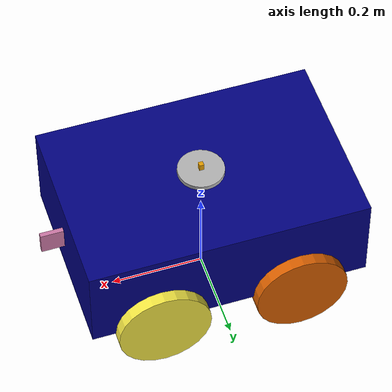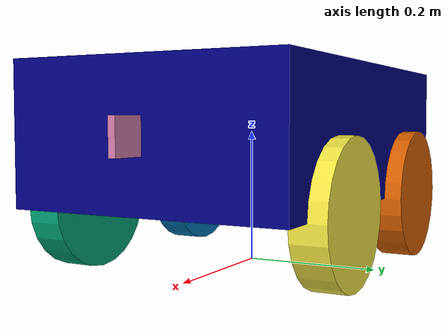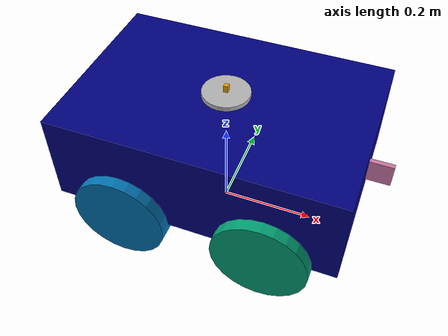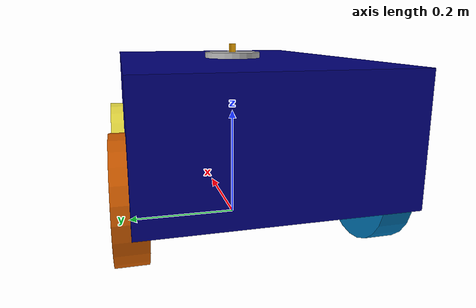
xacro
<?xml version="1.0"?>

<robot name="my_robot" xmlns:xacro="http://www.ros.org/wiki/xacro">
    <!-- Corrected typo in filename from "common_properies.xacro" to "common_properties.xacro" -->
    <xacro:include filename="common_properties.xacro" />

    <!-- Defined properties -->
    <xacro:property name="base_length" value="0.6" />
    <xacro:property name="base_width" value="0.4" />
    <xacro:property name="base_height" value="0.2" />
    <xacro:property name="wheel_radius" value="0.1" />
    <xacro:property name="wheel_length" value="0.05" />
    <xacro:property name="camera_length" value="0.01" />
    <xacro:property name="camera_width" value="0.05" />
    <xacro:property name="camera_height" value="0.1" />

    <!-- Links -->
    <link name="base_footprint" />

    <link name="base_link">
        <visual>
            <geometry>
                <box size="${base_length} ${base_width} ${base_height}" />
            </geometry>
            <!-- Corrected property syntax from {base_height / 2.0} to ${base_height / 2.0} -->
            <origin xyz="0 0 ${base_height / 2.0}" rpy="0 0 0" />
            <material name="blue" />
        </visual>
        <collision>
            <geometry>
                <box size="${base_length} ${base_width} ${base_height}" />
            </geometry>
            <origin xyz="0 0 ${base_height / 2.0}" rpy="0 0 0" />
        </collision>
        <!-- Corrected inertia dimensions (removed multiplication by 2) -->
        <xacro:box_inertia m="5.0" l="${base_length}" w="${base_width}" h="${base_height}"
                           xyz="0 0 ${base_height / 2.0}" rpy="0 0 0" />
    </link>

    <link name="front_right_wheel">
        <visual>
            <geometry>
                <!-- Updated to use properties for consistency -->
                <cylinder radius="${wheel_radius}" length="${wheel_length}" />
            </geometry>
            <!-- Standardized rotation to pi/2 -->
            <origin xyz="0 0 0" rpy="${pi / 2.0} 0 0" />
        </visual>
        <collision>
            <geometry>
                <cylinder radius="${wheel_radius}" length="${wheel_length}" />
            </geometry>
            <origin xyz="0 0 0" rpy="${pi / 2.0} 0 0" />
        </collision>
        <!-- Corrected inertia radius (removed multiplication by 2) -->
        <xacro:cylinder_inertia m="1.0" r="${wheel_radius}" h="${wheel_length}" xyz="0 0 0" rpy="${pi / 2.0} 0 0" />
    </link>

    <link name="front_left_wheel">
        <visual>
            <geometry>
                <cylinder radius="${wheel_radius}" length="${wheel_length}" />
            </geometry>
            <origin xyz="0 0 0" rpy="${pi / 2.0} 0 0" />
        </visual>
        <collision>
            <geometry>
                <cylinder radius="${wheel_radius}" length="${wheel_length}" />
            </geometry>
            <origin xyz="0 0 0" rpy="${pi / 2.0} 0 0" />
        </collision>
        <xacro:cylinder_inertia m="1.0" r="${wheel_radius}" h="${wheel_length}" xyz="0 0 0" rpy="${pi / 2.0} 0 0" />
    </link>

    <link name="back_right_wheel">
        <visual>
            <geometry>
                <cylinder radius="${wheel_radius}" length="${wheel_length}" />
            </geometry>
            <origin xyz="0 0 0" rpy="${pi / 2.0} 0 0" />
        </visual>
        <collision>
            <geometry>
                <cylinder radius="${wheel_radius}" length="${wheel_length}" />
            </geometry>
            <origin xyz="0 0 0" rpy="${pi / 2.0} 0 0" />
        </collision>
        <xacro:cylinder_inertia m="1.0" r="${wheel_radius}" h="${wheel_length}" xyz="0 0 0" rpy="${pi / 2.0} 0 0" />
    </link>

    <link name="back_left_wheel">
        <visual>
            <geometry>
                <cylinder radius="${wheel_radius}" length="${wheel_length}" />
            </geometry>
            <origin xyz="0 0 0" rpy="${pi / 2.0} 0 0" />
        </visual>
        <collision>
            <geometry>
                <cylinder radius="${wheel_radius}" length="${wheel_length}" />
            </geometry>
            <origin xyz="0 0 0" rpy="${pi / 2.0} 0 0" />
        </collision>
        <xacro:cylinder_inertia m="1.0" r="${wheel_radius}" h="${wheel_length}" xyz="0 0 0" rpy="${pi / 2.0} 0 0" />
    </link>

    <link name="camera_link">
        <visual>
            <geometry>
                <!-- Corrected to use ${} for property substitution -->
                <box size="${camera_length} ${camera_height} ${camera_width}" />
            </geometry>
            <origin xyz="0 0 0" rpy="0 0 1.57" />
        </visual>
        <collision>
            <geometry>
                <box size="${camera_length} ${camera_height} ${camera_width}" />
            </geometry>
            <origin xyz="0 0 0" rpy="0 0 1.57" />
        </collision>
        <!-- Updated inertia to match geometry dimensions -->
        <xacro:box_inertia m="0.2" l="${camera_length}" w="${camera_height}" h="${camera_width}"
                           xyz="0 0 0" rpy="0 0 0" />
    </link>

    <link name="lidar_link">
        <visual>
            <geometry>
                <cylinder radius="0.05" length="0.02" />
            </geometry>
            <origin xyz="0 0 0" rpy="0 0 0" />
        </visual>
        <collision>
            <geometry>
                <cylinder radius="0.05" length="0.02" />
            </geometry>
            <origin xyz="0 0 0" rpy="0 0 0" />
        </collision>
        <!-- Corrected inertia to match geometry -->
        <xacro:cylinder_inertia m="1.0" r="0.05" h="0.02" xyz="0 0 0" rpy="0 0 0" />
    </link>

    <link name="imu_link">
        <visual>
            <geometry>
                <box size="0.01 0.01 0.05" />
            </geometry>
            <origin xyz="0 0 0" rpy="0 0 0" />
        </visual>
        <collision>
            <geometry>
                <box size="0.001 0.01 0.05" />
            </geometry>
            <origin xyz="0 0 0" rpy="0 0 0" />
        </collision>
        <!-- Updated inertia to match visual geometry -->
        <xacro:box_inertia m="0.2" l="0.01" w="0.01" h="0.05" xyz="0 0 0" rpy="0 0 0" />
    </link>

    <!-- Joints -->
    <joint name="base_joint" type="fixed">
        <parent link="base_footprint" />
        <child link="base_link" />
        <origin xyz="0 0 ${wheel_radius}" rpy="0 0 0" />
    </joint>

    <!-- Corrected z-coordinate to 0 so wheels touch the ground -->
    <joint name="base_front_right_wheel_joint" type="continuous">
        <parent link="base_link" />
        <child link="front_right_wheel" />
        <origin xyz="0.15 -0.2 0" rpy="0 0 0" />
        <axis xyz="0 1 0" />
    </joint>
    <joint name="base_front_left_wheel_joint" type="continuous">
        <parent link="base_link" />
        <child link="front_left_wheel" />
        <origin xyz="0.15 0.2 0" rpy="0 0 0" />
        <axis xyz="0 1 0" />
    </joint>
    <joint name="base_back_right_wheel_joint" type="continuous">
        <parent link="base_link" />
        <child link="back_right_wheel" />
        <origin xyz="-0.15 -0.2 0" rpy="0 0 0" />
        <axis xyz="0 1 0" />
    </joint>
    <joint name="base_back_left_wheel_joint" type="continuous">
        <parent link="base_link" />
        <child link="back_left_wheel" />
        <origin xyz="-0.15 0.2 0" rpy="0 0 0" />
        <axis xyz="0 1 0" />
    </joint>

    <joint name="base_lidar_joint" type="fixed">
        <parent link="base_link" />
        <child link="lidar_link" />
        <origin xyz="0 0 ${base_height}" rpy="0 0 0" />
    </joint>
    <joint name="base_imu_joint" type="fixed">
        <parent link="base_link" />
        <child link="imu_link" />
        <origin xyz="0 0 0.2" rpy="0 0 0" />
    </joint>

    <joint name="camera_link_joint" type="fixed">
        <parent link="base_link" />
        <child link="camera_link" />
        <origin xyz="0.3 0 0.1" rpy="0 0 0" />
    </joint>

    <!-- Gazebo Plugins -->
    <gazebo reference="camera_link">
     <sensor name="camera" type="camera">
        <pose>0 0 0 0 0 0</pose>
        <always_on>true</always_on>
        <update_rate>30</update_rate>
        <visualize>true</visualize>
        <camera>
            <horizontal_fov>1.047</horizontal_fov>
            <image>
                <width>640</width>
                <height>480</height>
                <format>R8G8B8</format>
            </image>
            <clip>
                <near>0.1</near>
                <far>100</far>
            </clip>
             <noise>
                 <type>gaussian</type>
                 <mean>0.0</mean>
                 <stddev>0.007</stddev>
            </noise>
        </camera>
        <topic>camera</topic>
     </sensor>
    </gazebo>
    <gazebo reference="lidar_link">
    <sensor name="lidar" type="gpu_lidar">
        <always_on>true</always_on>
        <update_rate>10</update_rate>
        <visualize>true</visualize>
        <topic>lidar</topic>
        <lidar>
            <scan>
                <horizontal>
                    <samples>640</samples>
                    <resolution>1.0</resolution>
                    <min_angle>-3.14159</min_angle>
                    <max_angle>3.14159</max_angle>
                </horizontal>
            </scan>
            <range>
                <min>0.15</min>
                <max>12.0</max>
                <resolution>0.01</resolution>
            </range>
        </lidar>
    </sensor>
</gazebo>
<gazebo reference="imu_link">
    <sensor name="imu" type="imu">
        <always_on>true</always_on>
        <update_rate>50</update_rate>
        <visualize>true</visualize>
        <topic>imu</topic>
    </sensor>
</gazebo>
    <gazebo>
        <plugin filename="gz-sim-diff-drive-system" name="gz::sim::systems::DiffDrive">
            <left_joint>base_back_left_wheel_joint</left_joint>
            <left_joint>base_front_left_wheel_joint</left_joint>
            <right_joint>base_back_right_wheel_joint</right_joint>
            <right_joint>base_front_right_wheel_joint</right_joint>
            <!-- Corrected wheel separation to 0.4 (distance between wheel centers) -->
            <wheel_separation>0.4</wheel_separation>
            <wheel_radius>0.1</wheel_radius>
            <odom_frame>odom</odom_frame>
        <base_frame>base_footprint</base_frame>
        <publish_tf>true</publish_tf>
        <publish_odom>true</publish_odom>
        <publish_odom_tf>true</publish_odom_tf>

        <odom_topic>odometry</odom_topic>
            <odom_publish_frequency>50</odom_publish_frequency>

            <max_linear_acceleration>5.0</max_linear_acceleration>
            <min_linear_acceleration>-5.0</min_linear_acceleration>
            <max_angular_acceleration>10.0</max_angular_acceleration>
            <min_angular_acceleration>-10.0</min_angular_acceleration>
            <max_linear_velocity>2.0</max_linear_velocity>
            <min_linear_velocity>-2.0</min_linear_velocity>
            <max_angular_velocity>5.0</max_angular_velocity>
            <min_angular_velocity>-5.0</min_angular_velocity>
            <odom_frame>odom</odom_frame>
            <base_frame>base_footprint</base_frame>
            <publish_tf>true</publish_tf>
            <publish_odom>true</publish_odom>
            <publish_odom_tf>true</publish_odom_tf>
            <odom_topic>odometry</odom_topic>
            <tf_topic>tf</tf_topic>
            <topic>cmd_vel</topic>
        </plugin>

        <plugin filename="gz-sim-joint-state-publisher-system" name="gz::sim::systems::JointStatePublisher">
            <topic>joint_states</topic>
            <joint_name>base_back_left_wheel_joint</joint_name>
            <joint_name>base_back_right_wheel_joint</joint_name>
            <joint_name>base_front_left_wheel_joint</joint_name>
            <joint_name>base_front_right_wheel_joint</joint_name>
        </plugin>
    </gazebo>
    <gazebo reference="front_left_wheel">
    <mu1>1.0</mu1>  <!-- Changed from 0.01 to 1.0 -->
    <mu2>1.0</mu2>
</gazebo>

<gazebo reference="front_right_wheel">
    <mu1>1.0</mu1>  <!-- Changed from 0.01 to 1.0 -->
    <mu2>1.0</mu2>
</gazebo>

<gazebo reference="back_left_wheel">
    <mu1>1.0</mu1>
    <mu2>1.0</mu2>
</gazebo>

<gazebo reference="back_right_wheel">
    <mu1>1.0</mu1>
    <mu2>1.0</mu2>
</gazebo>
</robot>

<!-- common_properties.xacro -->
<robot xmlns:xacro="http://www.ros.org/wiki/xacro">
<material name="blue">
        <color rgba="0 0 0.5 1" />
    </material>
<xacro:macro name="box_inertia" params="m l w h xyz rpy">
        <inertial>
            <origin xyz="${xyz}" rpy="${rpy}" />
            <mass value="${m}" />
            <inertia ixx="${(m / 12) * (h*h + l*l)}" ixy="0" ixz="0"
                     iyy="${(m / 12) * (w*w +l*l)}" iyz="0"
                     izz="${(m / 12) * (w*w + h*h)}" />

        </inertial>
    </xacro:macro>
    <xacro:macro name="cylinder_inertia" params="m r h xyz rpy">
        <inertial>
            <origin xyz="${xyz}" rpy="${rpy}" />
            <mass value="${m}" />
            <inertia ixx="${(m / 12) * (3*r*r + h*h)}" ixy="0" ixz="0"
                    iyy="${(m / 12) * (3*r*r + h*h)}" iyz="0"
                    izz="${(m / 2) * (r * r)}" />
        </inertial>
    </xacro:macro>
</robot>
